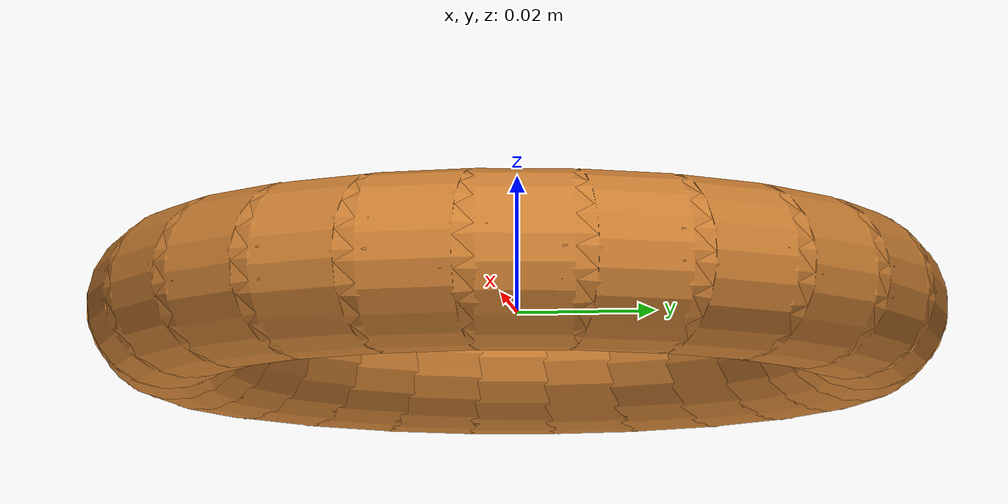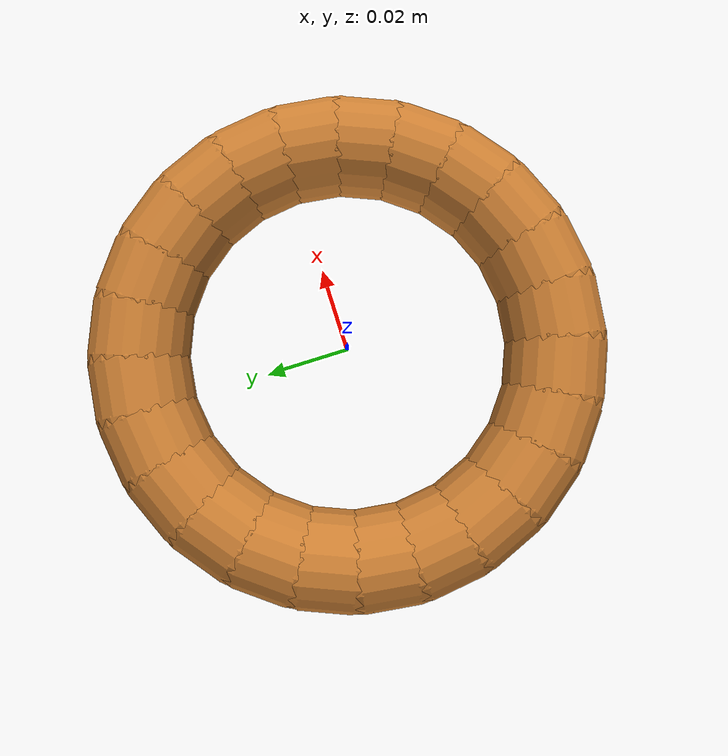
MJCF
<mujoco model="torus_ring_orange">
  <worldbody>
    <body>
      <body name="object">
        <!-- 组合几何体生成圆环 -->
        <geom name="ring_seg_0" type="capsule" fromto="0.05 0.0 0 0.04829629131445342 0.012940952255126037 0" size="0.011" rgba="0.8 0.5 0.2 1" density="50" friction="1.0 0.05 0.05" condim="6" solref="0.001 1" solimp="0.95 0.99 0.001" group="0"/>
        <geom name="ring_seg_vis_0" type="capsule" fromto="0.05 0.0 0 0.04829629131445342 0.012940952255126037 0" size="0.012" rgba="0.8 0.5 0.2 1" contype="0" conaffinity="0" group="1"/>
        <geom name="ring_seg_1" type="capsule" fromto="0.04829629131445342 0.012940952255126037 0 0.04330127018922194 0.024999999999999998 0" size="0.011" rgba="0.8 0.5 0.2 1" density="50" friction="1.0 0.05 0.05" condim="6" solref="0.001 1" solimp="0.95 0.99 0.001" group="0"/>
        <geom name="ring_seg_vis_1" type="capsule" fromto="0.04829629131445342 0.012940952255126037 0 0.04330127018922194 0.024999999999999998 0" size="0.012" rgba="0.8 0.5 0.2 1" contype="0" conaffinity="0" group="1"/>
        <geom name="ring_seg_2" type="capsule" fromto="0.04330127018922194 0.024999999999999998 0 0.03535533905932738 0.035355339059327376 0" size="0.011" rgba="0.8 0.5 0.2 1" density="50" friction="1.0 0.05 0.05" condim="6" solref="0.001 1" solimp="0.95 0.99 0.001" group="0"/>
        <geom name="ring_seg_vis_2" type="capsule" fromto="0.04330127018922194 0.024999999999999998 0 0.03535533905932738 0.035355339059327376 0" size="0.012" rgba="0.8 0.5 0.2 1" contype="0" conaffinity="0" group="1"/>
        <geom name="ring_seg_3" type="capsule" fromto="0.03535533905932738 0.035355339059327376 0 0.02500000000000001 0.04330127018922193 0" size="0.011" rgba="0.8 0.5 0.2 1" density="50" friction="1.0 0.05 0.05" condim="6" solref="0.001 1" solimp="0.95 0.99 0.001" group="0"/>
        <geom name="ring_seg_vis_3" type="capsule" fromto="0.03535533905932738 0.035355339059327376 0 0.02500000000000001 0.04330127018922193 0" size="0.012" rgba="0.8 0.5 0.2 1" contype="0" conaffinity="0" group="1"/>
        <geom name="ring_seg_4" type="capsule" fromto="0.02500000000000001 0.04330127018922193 0 0.012940952255126037 0.04829629131445342 0" size="0.011" rgba="0.8 0.5 0.2 1" density="50" friction="1.0 0.05 0.05" condim="6" solref="0.001 1" solimp="0.95 0.99 0.001" group="0"/>
        <geom name="ring_seg_vis_4" type="capsule" fromto="0.02500000000000001 0.04330127018922193 0 0.012940952255126037 0.04829629131445342 0" size="0.012" rgba="0.8 0.5 0.2 1" contype="0" conaffinity="0" group="1"/>
        <geom name="ring_seg_5" type="capsule" fromto="0.012940952255126037 0.04829629131445342 0 3.061616997868383e-18 0.05 0" size="0.011" rgba="0.8 0.5 0.2 1" density="50" friction="1.0 0.05 0.05" condim="6" solref="0.001 1" solimp="0.95 0.99 0.001" group="0"/>
        <geom name="ring_seg_vis_5" type="capsule" fromto="0.012940952255126037 0.04829629131445342 0 3.061616997868383e-18 0.05 0" size="0.012" rgba="0.8 0.5 0.2 1" contype="0" conaffinity="0" group="1"/>
        <geom name="ring_seg_6" type="capsule" fromto="3.061616997868383e-18 0.05 0 -0.012940952255126032 0.04829629131445342 0" size="0.011" rgba="0.8 0.5 0.2 1" density="50" friction="1.0 0.05 0.05" condim="6" solref="0.001 1" solimp="0.95 0.99 0.001" group="0"/>
        <geom name="ring_seg_vis_6" type="capsule" fromto="3.061616997868383e-18 0.05 0 -0.012940952255126032 0.04829629131445342 0" size="0.012" rgba="0.8 0.5 0.2 1" contype="0" conaffinity="0" group="1"/>
        <geom name="ring_seg_7" type="capsule" fromto="-0.012940952255126032 0.04829629131445342 0 -0.02499999999999999 0.04330127018922194 0" size="0.011" rgba="0.8 0.5 0.2 1" density="50" friction="1.0 0.05 0.05" condim="6" solref="0.001 1" solimp="0.95 0.99 0.001" group="0"/>
        <geom name="ring_seg_vis_7" type="capsule" fromto="-0.012940952255126032 0.04829629131445342 0 -0.02499999999999999 0.04330127018922194 0" size="0.012" rgba="0.8 0.5 0.2 1" contype="0" conaffinity="0" group="1"/>
        <geom name="ring_seg_8" type="capsule" fromto="-0.02499999999999999 0.04330127018922194 0 -0.035355339059327376 0.03535533905932738 0" size="0.011" rgba="0.8 0.5 0.2 1" density="50" friction="1.0 0.05 0.05" condim="6" solref="0.001 1" solimp="0.95 0.99 0.001" group="0"/>
        <geom name="ring_seg_vis_8" type="capsule" fromto="-0.02499999999999999 0.04330127018922194 0 -0.035355339059327376 0.03535533905932738 0" size="0.012" rgba="0.8 0.5 0.2 1" contype="0" conaffinity="0" group="1"/>
        <geom name="ring_seg_9" type="capsule" fromto="-0.035355339059327376 0.03535533905932738 0 -0.04330127018922194 0.024999999999999998 0" size="0.011" rgba="0.8 0.5 0.2 1" density="50" friction="1.0 0.05 0.05" condim="6" solref="0.001 1" solimp="0.95 0.99 0.001" group="0"/>
        <geom name="ring_seg_vis_9" type="capsule" fromto="-0.035355339059327376 0.03535533905932738 0 -0.04330127018922194 0.024999999999999998 0" size="0.012" rgba="0.8 0.5 0.2 1" contype="0" conaffinity="0" group="1"/>
        <geom name="ring_seg_10" type="capsule" fromto="-0.04330127018922194 0.024999999999999998 0 -0.04829629131445341 0.01294095225512605 0" size="0.011" rgba="0.8 0.5 0.2 1" density="50" friction="1.0 0.05 0.05" condim="6" solref="0.001 1" solimp="0.95 0.99 0.001" group="0"/>
        <geom name="ring_seg_vis_10" type="capsule" fromto="-0.04330127018922194 0.024999999999999998 0 -0.04829629131445341 0.01294095225512605 0" size="0.012" rgba="0.8 0.5 0.2 1" contype="0" conaffinity="0" group="1"/>
        <geom name="ring_seg_11" type="capsule" fromto="-0.04829629131445341 0.01294095225512605 0 -0.05 6.123233995736766e-18 0" size="0.011" rgba="0.8 0.5 0.2 1" density="50" friction="1.0 0.05 0.05" condim="6" solref="0.001 1" solimp="0.95 0.99 0.001" group="0"/>
        <geom name="ring_seg_vis_11" type="capsule" fromto="-0.04829629131445341 0.01294095225512605 0 -0.05 6.123233995736766e-18 0" size="0.012" rgba="0.8 0.5 0.2 1" contype="0" conaffinity="0" group="1"/>
        <geom name="ring_seg_12" type="capsule" fromto="-0.05 6.123233995736766e-18 0 -0.04829629131445342 -0.01294095225512604 0" size="0.011" rgba="0.8 0.5 0.2 1" density="50" friction="1.0 0.05 0.05" condim="6" solref="0.001 1" solimp="0.95 0.99 0.001" group="0"/>
        <geom name="ring_seg_vis_12" type="capsule" fromto="-0.05 6.123233995736766e-18 0 -0.04829629131445342 -0.01294095225512604 0" size="0.012" rgba="0.8 0.5 0.2 1" contype="0" conaffinity="0" group="1"/>
        <geom name="ring_seg_13" type="capsule" fromto="-0.04829629131445342 -0.01294095225512604 0 -0.043301270189221946 -0.024999999999999988 0" size="0.011" rgba="0.8 0.5 0.2 1" density="50" friction="1.0 0.05 0.05" condim="6" solref="0.001 1" solimp="0.95 0.99 0.001" group="0"/>
        <geom name="ring_seg_vis_13" type="capsule" fromto="-0.04829629131445342 -0.01294095225512604 0 -0.043301270189221946 -0.024999999999999988 0" size="0.012" rgba="0.8 0.5 0.2 1" contype="0" conaffinity="0" group="1"/>
        <geom name="ring_seg_14" type="capsule" fromto="-0.043301270189221946 -0.024999999999999988 0 -0.0353553390593274 -0.035355339059327355 0" size="0.011" rgba="0.8 0.5 0.2 1" density="50" friction="1.0 0.05 0.05" condim="6" solref="0.001 1" solimp="0.95 0.99 0.001" group="0"/>
        <geom name="ring_seg_vis_14" type="capsule" fromto="-0.043301270189221946 -0.024999999999999988 0 -0.0353553390593274 -0.035355339059327355 0" size="0.012" rgba="0.8 0.5 0.2 1" contype="0" conaffinity="0" group="1"/>
        <geom name="ring_seg_15" type="capsule" fromto="-0.0353553390593274 -0.035355339059327355 0 -0.025000000000000022 -0.04330127018922192 0" size="0.011" rgba="0.8 0.5 0.2 1" density="50" friction="1.0 0.05 0.05" condim="6" solref="0.001 1" solimp="0.95 0.99 0.001" group="0"/>
        <geom name="ring_seg_vis_15" type="capsule" fromto="-0.0353553390593274 -0.035355339059327355 0 -0.025000000000000022 -0.04330127018922192 0" size="0.012" rgba="0.8 0.5 0.2 1" contype="0" conaffinity="0" group="1"/>
        <geom name="ring_seg_16" type="capsule" fromto="-0.025000000000000022 -0.04330127018922192 0 -0.012940952255126032 -0.04829629131445342 0" size="0.011" rgba="0.8 0.5 0.2 1" density="50" friction="1.0 0.05 0.05" condim="6" solref="0.001 1" solimp="0.95 0.99 0.001" group="0"/>
        <geom name="ring_seg_vis_16" type="capsule" fromto="-0.025000000000000022 -0.04330127018922192 0 -0.012940952255126032 -0.04829629131445342 0" size="0.012" rgba="0.8 0.5 0.2 1" contype="0" conaffinity="0" group="1"/>
        <geom name="ring_seg_17" type="capsule" fromto="-0.012940952255126032 -0.04829629131445342 0 -9.184850993605149e-18 -0.05 0" size="0.011" rgba="0.8 0.5 0.2 1" density="50" friction="1.0 0.05 0.05" condim="6" solref="0.001 1" solimp="0.95 0.99 0.001" group="0"/>
        <geom name="ring_seg_vis_17" type="capsule" fromto="-0.012940952255126032 -0.04829629131445342 0 -9.184850993605149e-18 -0.05 0" size="0.012" rgba="0.8 0.5 0.2 1" contype="0" conaffinity="0" group="1"/>
        <geom name="ring_seg_18" type="capsule" fromto="-9.184850993605149e-18 -0.05 0 0.012940952255126016 -0.04829629131445343 0" size="0.011" rgba="0.8 0.5 0.2 1" density="50" friction="1.0 0.05 0.05" condim="6" solref="0.001 1" solimp="0.95 0.99 0.001" group="0"/>
        <geom name="ring_seg_vis_18" type="capsule" fromto="-9.184850993605149e-18 -0.05 0 0.012940952255126016 -0.04829629131445343 0" size="0.012" rgba="0.8 0.5 0.2 1" contype="0" conaffinity="0" group="1"/>
        <geom name="ring_seg_19" type="capsule" fromto="0.012940952255126016 -0.04829629131445343 0 0.02500000000000001 -0.04330127018922193 0" size="0.011" rgba="0.8 0.5 0.2 1" density="50" friction="1.0 0.05 0.05" condim="6" solref="0.001 1" solimp="0.95 0.99 0.001" group="0"/>
        <geom name="ring_seg_vis_19" type="capsule" fromto="0.012940952255126016 -0.04829629131445343 0 0.02500000000000001 -0.04330127018922193 0" size="0.012" rgba="0.8 0.5 0.2 1" contype="0" conaffinity="0" group="1"/>
        <geom name="ring_seg_20" type="capsule" fromto="0.02500000000000001 -0.04330127018922193 0 0.03535533905932737 -0.03535533905932738 0" size="0.011" rgba="0.8 0.5 0.2 1" density="50" friction="1.0 0.05 0.05" condim="6" solref="0.001 1" solimp="0.95 0.99 0.001" group="0"/>
        <geom name="ring_seg_vis_20" type="capsule" fromto="0.02500000000000001 -0.04330127018922193 0 0.03535533905932737 -0.03535533905932738 0" size="0.012" rgba="0.8 0.5 0.2 1" contype="0" conaffinity="0" group="1"/>
        <geom name="ring_seg_21" type="capsule" fromto="0.03535533905932737 -0.03535533905932738 0 0.04330127018922192 -0.025000000000000022 0" size="0.011" rgba="0.8 0.5 0.2 1" density="50" friction="1.0 0.05 0.05" condim="6" solref="0.001 1" solimp="0.95 0.99 0.001" group="0"/>
        <geom name="ring_seg_vis_21" type="capsule" fromto="0.03535533905932737 -0.03535533905932738 0 0.04330127018922192 -0.025000000000000022 0" size="0.012" rgba="0.8 0.5 0.2 1" contype="0" conaffinity="0" group="1"/>
        <geom name="ring_seg_22" type="capsule" fromto="0.04330127018922192 -0.025000000000000022 0 0.048296291314453406 -0.012940952255126079 0" size="0.011" rgba="0.8 0.5 0.2 1" density="50" friction="1.0 0.05 0.05" condim="6" solref="0.001 1" solimp="0.95 0.99 0.001" group="0"/>
        <geom name="ring_seg_vis_22" type="capsule" fromto="0.04330127018922192 -0.025000000000000022 0 0.048296291314453406 -0.012940952255126079 0" size="0.012" rgba="0.8 0.5 0.2 1" contype="0" conaffinity="0" group="1"/>
        <geom name="ring_seg_23" type="capsule" fromto="0.048296291314453406 -0.012940952255126079 0 0.05 0.0 0" size="0.011" rgba="0.8 0.5 0.2 1" density="50" friction="1.0 0.05 0.05" condim="6" solref="0.001 1" solimp="0.95 0.99 0.001" group="0"/>
        <geom name="ring_seg_vis_23" type="capsule" fromto="0.048296291314453406 -0.012940952255126079 0 0.05 0.0 0" size="0.012" rgba="0.8 0.5 0.2 1" contype="0" conaffinity="0" group="1"/>
      </body>
    </body>
  </worldbody>
</mujoco>
